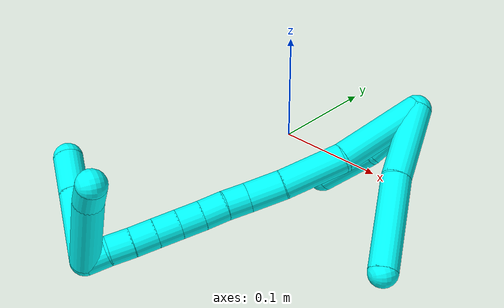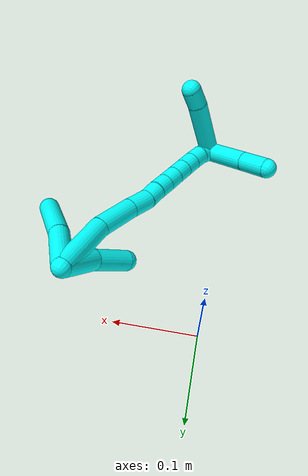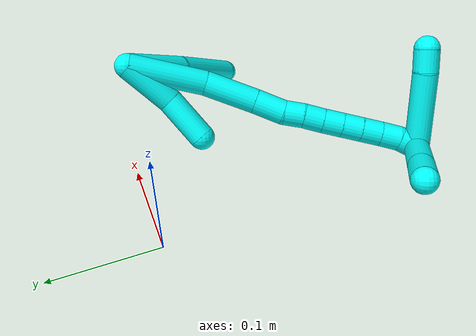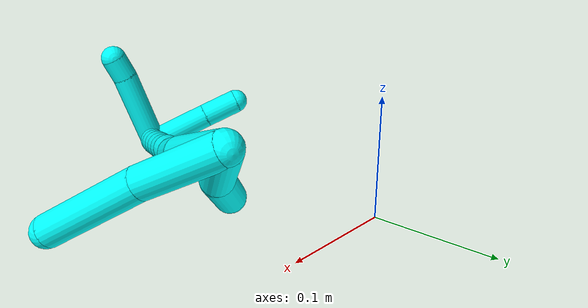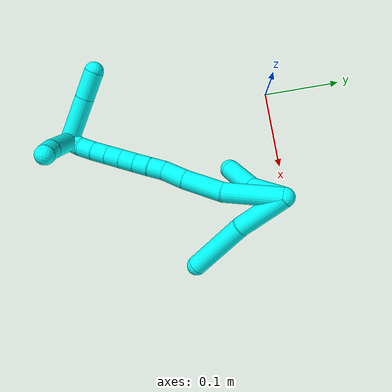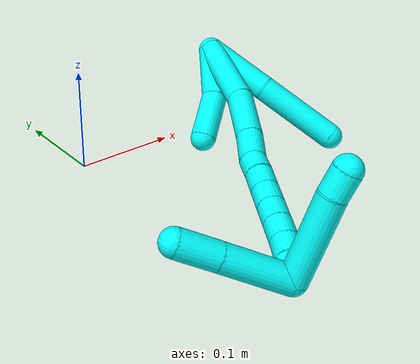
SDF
<sdf version="1.7">
 <world name="default">
  <model name="3">
   <static>0</static>
   <link name="3">
    <collision name="collision-cylinder-e_1_2_8">
     <pose>0.020871 0.015498 0.021859 -0.616726 0.661724 -0.217951</pose>
     <geometry><cylinder><radius>0.0125</radius><length>0.067929</length></cylinder></geometry>
     <surface>
      <friction><ode><mu>1.16</mu><mu2>1.16</mu2><slip1>0</slip1><slip2>0</slip2></ode></friction>
      <contact><ode><kp>1e+06</kp><kd>1</kd><max_vel>0</max_vel><min_depth>0.001</min_depth></ode></contact>
     </surface>
    </collision>
    <visual name="visual-cylinder-e_1_2_8">
     <pose>0.020871 0.015498 0.021859 -0.616726 0.661724 -0.217951</pose>
     <geometry><cylinder><radius>0.0125</radius><length>0.067929</length></cylinder></geometry>
     <material><ambient>0.003922 1 0.996078 1</ambient></material>
    </visual>
    <collision name="collision-cylinder-e_2_8_6">
     <pose>0.070008 0.051264 0.065493 -0.749596 0.75989 -0.311655</pose>
     <geometry><cylinder><radius>0.0125</radius><length>0.082071</length></cylinder></geometry>
     <surface>
      <friction><ode><mu>1.16</mu><mu2>1.16</mu2><slip1>0</slip1><slip2>0</slip2></ode></friction>
      <contact><ode><kp>1e+06</kp><kd>1</kd><max_vel>0</max_vel><min_depth>0.001</min_depth></ode></contact>
     </surface>
    </collision>
    <visual name="visual-cylinder-e_2_8_6">
     <pose>0.070008 0.051264 0.065493 -0.749596 0.75989 -0.311655</pose>
     <geometry><cylinder><radius>0.0125</radius><length>0.082071</length></cylinder></geometry>
     <material><ambient>0.003922 1 0.996078 1</ambient></material>
    </visual>
    <collision name="collision-cylinder-e_1_2_9">
     <pose>0.015586 -0.009627 0.018823 0.472749 0.635254 0.158051</pose>
     <geometry><cylinder><radius>0.0125</radius><length>0.052532</length></cylinder></geometry>
     <surface>
      <friction><ode><mu>1.16</mu><mu2>1.16</mu2><slip1>0</slip1><slip2>0</slip2></ode></friction>
      <contact><ode><kp>1e+06</kp><kd>1</kd><max_vel>0</max_vel><min_depth>0.001</min_depth></ode></contact>
     </surface>
    </collision>
    <visual name="visual-cylinder-e_1_2_9">
     <pose>0.015586 -0.009627 0.018823 0.472749 0.635254 0.158051</pose>
     <geometry><cylinder><radius>0.0125</radius><length>0.052532</length></cylinder></geometry>
     <material><ambient>0.003922 1 0.996078 1</ambient></material>
    </visual>
    <collision name="collision-cylinder-e_2_9_5">
     <pose>0.041839 -0.034058 0.052822 0.773028 0.466179 0.192643</pose>
     <geometry><cylinder><radius>0.0125</radius><length>0.047468</length></cylinder></geometry>
     <surface>
      <friction><ode><mu>1.16</mu><mu2>1.16</mu2><slip1>0</slip1><slip2>0</slip2></ode></friction>
      <contact><ode><kp>1e+06</kp><kd>1</kd><max_vel>0</max_vel><min_depth>0.001</min_depth></ode></contact>
     </surface>
    </collision>
    <visual name="visual-cylinder-e_2_9_5">
     <pose>0.041839 -0.034058 0.052822 0.773028 0.466179 0.192643</pose>
     <geometry><cylinder><radius>0.0125</radius><length>0.047468</length></cylinder></geometry>
     <material><ambient>0.003922 1 0.996078 1</ambient></material>
    </visual>
    <collision name="collision-cylinder-e_1_2_10">
     <pose>0.012628 -0.001421 0.036139 0.039298 0.335935 0.006664</pose>
     <geometry><cylinder><radius>0.0125</radius><length>0.076616</length></cylinder></geometry>
     <surface>
      <friction><ode><mu>1.16</mu><mu2>1.16</mu2><slip1>0</slip1><slip2>0</slip2></ode></friction>
      <contact><ode><kp>1e+06</kp><kd>1</kd><max_vel>0</max_vel><min_depth>0.001</min_depth></ode></contact>
     </surface>
    </collision>
    <visual name="visual-cylinder-e_1_2_10">
     <pose>0.012628 -0.001421 0.036139 0.039298 0.335935 0.006664</pose>
     <geometry><cylinder><radius>0.0125</radius><length>0.076616</length></cylinder></geometry>
     <material><ambient>0.003922 1 0.996078 1</ambient></material>
    </visual>
    <collision name="collision-cylinder-e_2_10_11">
     <pose>0.032173 -0.009675 0.09688 0.270918 0.264508 0.036259</pose>
     <geometry><cylinder><radius>0.0125</radius><length>0.052909</length></cylinder></geometry>
     <surface>
      <friction><ode><mu>1.16</mu><mu2>1.16</mu2><slip1>0</slip1><slip2>0</slip2></ode></friction>
      <contact><ode><kp>1e+06</kp><kd>1</kd><max_vel>0</max_vel><min_depth>0.001</min_depth></ode></contact>
     </surface>
    </collision>
    <visual name="visual-cylinder-e_2_10_11">
     <pose>0.032173 -0.009675 0.09688 0.270918 0.264508 0.036259</pose>
     <geometry><cylinder><radius>0.0125</radius><length>0.052909</length></cylinder></geometry>
     <material><ambient>0.003922 1 0.996078 1</ambient></material>
    </visual>
    <collision name="collision-cylinder-e_3_11_12">
     <pose>0.042379 -0.021461 0.135464 0.340417 0.21833 0.03767</pose>
     <geometry><cylinder><radius>0.0125</radius><length>0.030384</length></cylinder></geometry>
     <surface>
      <friction><ode><mu>1.16</mu><mu2>1.16</mu2><slip1>0</slip1><slip2>0</slip2></ode></friction>
      <contact><ode><kp>1e+06</kp><kd>1</kd><max_vel>0</max_vel><min_depth>0.001</min_depth></ode></contact>
     </surface>
    </collision>
    <visual name="visual-cylinder-e_3_11_12">
     <pose>0.042379 -0.021461 0.135464 0.340417 0.21833 0.03767</pose>
     <geometry><cylinder><radius>0.0125</radius><length>0.030384</length></cylinder></geometry>
     <material><ambient>0.003922 1 0.996078 1</ambient></material>
    </visual>
    <collision name="collision-cylinder-e_4_12_13">
     <pose>0.04697 -0.027763 0.15928 0.136486 0.130198 0.008911</pose>
     <geometry><cylinder><radius>0.0125</radius><length>0.020026</length></cylinder></geometry>
     <surface>
      <friction><ode><mu>1.16</mu><mu2>1.16</mu2><slip1>0</slip1><slip2>0</slip2></ode></friction>
      <contact><ode><kp>1e+06</kp><kd>1</kd><max_vel>0</max_vel><min_depth>0.001</min_depth></ode></contact>
     </surface>
    </collision>
    <visual name="visual-cylinder-e_4_12_13">
     <pose>0.04697 -0.027763 0.15928 0.136486 0.130198 0.008911</pose>
     <geometry><cylinder><radius>0.0125</radius><length>0.020026</length></cylinder></geometry>
     <material><ambient>0.003922 1 0.996078 1</ambient></material>
    </visual>
    <collision name="collision-cylinder-e_5_13_14">
     <pose>0.050397 -0.030947 0.178725 0.188486 0.214056 0.02031</pose>
     <geometry><cylinder><radius>0.0125</radius><length>0.020023</length></cylinder></geometry>
     <surface>
      <friction><ode><mu>1.16</mu><mu2>1.16</mu2><slip1>0</slip1><slip2>0</slip2></ode></friction>
      <contact><ode><kp>1e+06</kp><kd>1</kd><max_vel>0</max_vel><min_depth>0.001</min_depth></ode></contact>
     </surface>
    </collision>
    <visual name="visual-cylinder-e_5_13_14">
     <pose>0.050397 -0.030947 0.178725 0.188486 0.214056 0.02031</pose>
     <geometry><cylinder><radius>0.0125</radius><length>0.020023</length></cylinder></geometry>
     <material><ambient>0.003922 1 0.996078 1</ambient></material>
    </visual>
    <collision name="collision-cylinder-e_6_14_15">
     <pose>0.054257 -0.034546 0.198035 0.180017 0.17411 0.015753</pose>
     <geometry><cylinder><radius>0.0125</radius><length>0.020021</length></cylinder></geometry>
     <surface>
      <friction><ode><mu>1.16</mu><mu2>1.16</mu2><slip1>0</slip1><slip2>0</slip2></ode></friction>
      <contact><ode><kp>1e+06</kp><kd>1</kd><max_vel>0</max_vel><min_depth>0.001</min_depth></ode></contact>
     </surface>
    </collision>
    <visual name="visual-cylinder-e_6_14_15">
     <pose>0.054257 -0.034546 0.198035 0.180017 0.17411 0.015753</pose>
     <geometry><cylinder><radius>0.0125</radius><length>0.020021</length></cylinder></geometry>
     <material><ambient>0.003922 1 0.996078 1</ambient></material>
    </visual>
    <collision name="collision-cylinder-e_7_15_16">
     <pose>0.057724 -0.038074 0.217426 0.179978 0.174126 0.015751</pose>
     <geometry><cylinder><radius>0.0125</radius><length>0.020003</length></cylinder></geometry>
     <surface>
      <friction><ode><mu>1.16</mu><mu2>1.16</mu2><slip1>0</slip1><slip2>0</slip2></ode></friction>
      <contact><ode><kp>1e+06</kp><kd>1</kd><max_vel>0</max_vel><min_depth>0.001</min_depth></ode></contact>
     </surface>
    </collision>
    <visual name="visual-cylinder-e_7_15_16">
     <pose>0.057724 -0.038074 0.217426 0.179978 0.174126 0.015751</pose>
     <geometry><cylinder><radius>0.0125</radius><length>0.020003</length></cylinder></geometry>
     <material><ambient>0.003922 1 0.996078 1</ambient></material>
    </visual>
    <collision name="collision-cylinder-e_8_16_17">
     <pose>0.061273 -0.041588 0.2368 0.178839 0.182476 0.016406</pose>
     <geometry><cylinder><radius>0.0125</radius><length>0.020013</length></cylinder></geometry>
     <surface>
      <friction><ode><mu>1.16</mu><mu2>1.16</mu2><slip1>0</slip1><slip2>0</slip2></ode></friction>
      <contact><ode><kp>1e+06</kp><kd>1</kd><max_vel>0</max_vel><min_depth>0.001</min_depth></ode></contact>
     </surface>
    </collision>
    <visual name="visual-cylinder-e_8_16_17">
     <pose>0.061273 -0.041588 0.2368 0.178839 0.182476 0.016406</pose>
     <geometry><cylinder><radius>0.0125</radius><length>0.020013</length></cylinder></geometry>
     <material><ambient>0.003922 1 0.996078 1</ambient></material>
    </visual>
    <collision name="collision-cylinder-e_9_17_18">
     <pose>0.064614 -0.045467 0.256138 0.217041 0.153088 0.016711</pose>
     <geometry><cylinder><radius>0.0125</radius><length>0.020006</length></cylinder></geometry>
     <surface>
      <friction><ode><mu>1.16</mu><mu2>1.16</mu2><slip1>0</slip1><slip2>0</slip2></ode></friction>
      <contact><ode><kp>1e+06</kp><kd>1</kd><max_vel>0</max_vel><min_depth>0.001</min_depth></ode></contact>
     </surface>
    </collision>
    <visual name="visual-cylinder-e_9_17_18">
     <pose>0.064614 -0.045467 0.256138 0.217041 0.153088 0.016711</pose>
     <geometry><cylinder><radius>0.0125</radius><length>0.020006</length></cylinder></geometry>
     <material><ambient>0.003922 1 0.996078 1</ambient></material>
    </visual>
    <collision name="collision-cylinder-e_10_18_1">
     <pose>0.068807 -0.051274 0.2747 0.391554 0.270085 0.053877</pose>
     <geometry><cylinder><radius>0.0125</radius><length>0.02</length></cylinder></geometry>
     <surface>
      <friction><ode><mu>1.16</mu><mu2>1.16</mu2><slip1>0</slip1><slip2>0</slip2></ode></friction>
      <contact><ode><kp>1e+06</kp><kd>1</kd><max_vel>0</max_vel><min_depth>0.001</min_depth></ode></contact>
     </surface>
    </collision>
    <visual name="visual-cylinder-e_10_18_1">
     <pose>0.068807 -0.051274 0.2747 0.391554 0.270085 0.053877</pose>
     <geometry><cylinder><radius>0.0125</radius><length>0.02</length></cylinder></geometry>
     <material><ambient>0.003922 1 0.996078 1</ambient></material>
    </visual>
    <collision name="collision-cylinder-e_1_1_19">
     <pose>0.040301 -0.031973 0.285011 -1.50981 -0.934725 0.886533</pose>
     <geometry><cylinder><radius>0.0125</radius><length>0.077507</length></cylinder></geometry>
     <surface>
      <friction><ode><mu>1.16</mu><mu2>1.16</mu2><slip1>0</slip1><slip2>0</slip2></ode></friction>
      <contact><ode><kp>1e+06</kp><kd>1</kd><max_vel>0</max_vel><min_depth>0.001</min_depth></ode></contact>
     </surface>
    </collision>
    <visual name="visual-cylinder-e_1_1_19">
     <pose>0.040301 -0.031973 0.285011 -1.50981 -0.934725 0.886533</pose>
     <geometry><cylinder><radius>0.0125</radius><length>0.077507</length></cylinder></geometry>
     <material><ambient>0.003922 1 0.996078 1</ambient></material>
    </visual>
    <collision name="collision-cylinder-e_2_19_4">
     <pose>0.001011 -0.001211 0.286605 -1.54625 -0.806064 0.788498</pose>
     <geometry><cylinder><radius>0.0125</radius><length>0.022493</length></cylinder></geometry>
     <surface>
      <friction><ode><mu>1.16</mu><mu2>1.16</mu2><slip1>0</slip1><slip2>0</slip2></ode></friction>
      <contact><ode><kp>1e+06</kp><kd>1</kd><max_vel>0</max_vel><min_depth>0.001</min_depth></ode></contact>
     </surface>
    </collision>
    <visual name="visual-cylinder-e_2_19_4">
     <pose>0.001011 -0.001211 0.286605 -1.54625 -0.806064 0.788498</pose>
     <geometry><cylinder><radius>0.0125</radius><length>0.022493</length></cylinder></geometry>
     <material><ambient>0.003922 1 0.996078 1</ambient></material>
    </visual>
    <collision name="collision-cylinder-e_1_1_20">
     <pose>0.050947 -0.077996 0.277129 1.84487 -0.708881 -0.908745</pose>
     <geometry><cylinder><radius>0.0125</radius><length>0.063069</length></cylinder></geometry>
     <surface>
      <friction><ode><mu>1.16</mu><mu2>1.16</mu2><slip1>0</slip1><slip2>0</slip2></ode></friction>
      <contact><ode><kp>1e+06</kp><kd>1</kd><max_vel>0</max_vel><min_depth>0.001</min_depth></ode></contact>
     </surface>
    </collision>
    <visual name="visual-cylinder-e_1_1_20">
     <pose>0.050947 -0.077996 0.277129 1.84487 -0.708881 -0.908745</pose>
     <geometry><cylinder><radius>0.0125</radius><length>0.063069</length></cylinder></geometry>
     <material><ambient>0.003922 1 0.996078 1</ambient></material>
    </visual>
    <collision name="collision-cylinder-e_2_20_3">
     <pose>0.018529 -0.114649 0.266853 1.84292 -0.699553 -0.895848</pose>
     <geometry><cylinder><radius>0.0125</radius><length>0.036931</length></cylinder></geometry>
     <surface>
      <friction><ode><mu>1.16</mu><mu2>1.16</mu2><slip1>0</slip1><slip2>0</slip2></ode></friction>
      <contact><ode><kp>1e+06</kp><kd>1</kd><max_vel>0</max_vel><min_depth>0.001</min_depth></ode></contact>
     </surface>
    </collision>
    <visual name="visual-cylinder-e_2_20_3">
     <pose>0.018529 -0.114649 0.266853 1.84292 -0.699553 -0.895848</pose>
     <geometry><cylinder><radius>0.0125</radius><length>0.036931</length></cylinder></geometry>
     <material><ambient>0.003922 1 0.996078 1</ambient></material>
    </visual>
    <collision name="collision-sphere-3">
     <pose>0.00664 -0.128257 0.263056 0 -0 0</pose>
     <geometry><sphere><radius>0.0125</radius></sphere></geometry>
     <surface>
      <friction><ode><mu>1.16</mu><mu2>1.16</mu2><slip1>0</slip1><slip2>0</slip2></ode></friction>
      <contact><ode><kp>1e+06</kp><kd>1</kd><max_vel>0</max_vel><min_depth>0.001</min_depth></ode></contact>
     </surface>
    </collision>
    <visual name="visual-sphere-3">
     <pose>0.00664 -0.128257 0.263056 0 -0 0</pose>
     <geometry><sphere><radius>0.0125</radius></sphere></geometry>
     <material><ambient>0.003922 1 0.996078 1</ambient></material>
    </visual>
    <collision name="collision-sphere-20">
     <pose>0.030419 -0.10104 0.27065 0 -0 0</pose>
     <geometry><sphere><radius>0.0125</radius></sphere></geometry>
     <surface>
      <friction><ode><mu>1.16</mu><mu2>1.16</mu2><slip1>0</slip1><slip2>0</slip2></ode></friction>
      <contact><ode><kp>1e+06</kp><kd>1</kd><max_vel>0</max_vel><min_depth>0.001</min_depth></ode></contact>
     </surface>
    </collision>
    <visual name="visual-sphere-20">
     <pose>0.030419 -0.10104 0.27065 0 -0 0</pose>
     <geometry><sphere><radius>0.0125</radius></sphere></geometry>
     <material><ambient>0.003922 1 0.996078 1</ambient></material>
    </visual>
    <collision name="collision-sphere-4">
     <pose>-0.007104 0.006573 0.286796 0 -0 0</pose>
     <geometry><sphere><radius>0.0125</radius></sphere></geometry>
     <surface>
      <friction><ode><mu>1.16</mu><mu2>1.16</mu2><slip1>0</slip1><slip2>0</slip2></ode></friction>
      <contact><ode><kp>1e+06</kp><kd>1</kd><max_vel>0</max_vel><min_depth>0.001</min_depth></ode></contact>
     </surface>
    </collision>
    <visual name="visual-sphere-4">
     <pose>-0.007104 0.006573 0.286796 0 -0 0</pose>
     <geometry><sphere><radius>0.0125</radius></sphere></geometry>
     <material><ambient>0.003922 1 0.996078 1</ambient></material>
    </visual>
    <collision name="collision-sphere-10">
     <pose>0.025256 -0.002842 0.072277 0 -0 0</pose>
     <geometry><sphere><radius>0.0125</radius></sphere></geometry>
     <surface>
      <friction><ode><mu>1.16</mu><mu2>1.16</mu2><slip1>0</slip1><slip2>0</slip2></ode></friction>
      <contact><ode><kp>1e+06</kp><kd>1</kd><max_vel>0</max_vel><min_depth>0.001</min_depth></ode></contact>
     </surface>
    </collision>
    <visual name="visual-sphere-10">
     <pose>0.025256 -0.002842 0.072277 0 -0 0</pose>
     <geometry><sphere><radius>0.0125</radius></sphere></geometry>
     <material><ambient>0.003922 1 0.996078 1</ambient></material>
    </visual>
    <collision name="collision-sphere-5">
     <pose>0.052507 -0.048864 0.067998 0 -0 0</pose>
     <geometry><sphere><radius>0.0125</radius></sphere></geometry>
     <surface>
      <friction><ode><mu>1.16</mu><mu2>1.16</mu2><slip1>0</slip1><slip2>0</slip2></ode></friction>
      <contact><ode><kp>1e+06</kp><kd>1</kd><max_vel>0</max_vel><min_depth>0.001</min_depth></ode></contact>
     </surface>
    </collision>
    <visual name="visual-sphere-5">
     <pose>0.052507 -0.048864 0.067998 0 -0 0</pose>
     <geometry><sphere><radius>0.0125</radius></sphere></geometry>
     <material><ambient>0.003922 1 0.996078 1</ambient></material>
    </visual>
    <collision name="collision-sphere-6">
     <pose>0.098275 0.071532 0.087266 0 -0 0</pose>
     <geometry><sphere><radius>0.0125</radius></sphere></geometry>
     <surface>
      <friction><ode><mu>1.16</mu><mu2>1.16</mu2><slip1>0</slip1><slip2>0</slip2></ode></friction>
      <contact><ode><kp>1e+06</kp><kd>1</kd><max_vel>0</max_vel><min_depth>0.001</min_depth></ode></contact>
     </surface>
    </collision>
    <visual name="visual-sphere-6">
     <pose>0.098275 0.071532 0.087266 0 -0 0</pose>
     <geometry><sphere><radius>0.0125</radius></sphere></geometry>
     <material><ambient>0.003922 1 0.996078 1</ambient></material>
    </visual>
    <collision name="collision-sphere-9">
     <pose>0.031171 -0.019253 0.037646 0 -0 0</pose>
     <geometry><sphere><radius>0.0125</radius></sphere></geometry>
     <surface>
      <friction><ode><mu>1.16</mu><mu2>1.16</mu2><slip1>0</slip1><slip2>0</slip2></ode></friction>
      <contact><ode><kp>1e+06</kp><kd>1</kd><max_vel>0</max_vel><min_depth>0.001</min_depth></ode></contact>
     </surface>
    </collision>
    <visual name="visual-sphere-9">
     <pose>0.031171 -0.019253 0.037646 0 -0 0</pose>
     <geometry><sphere><radius>0.0125</radius></sphere></geometry>
     <material><ambient>0.003922 1 0.996078 1</ambient></material>
    </visual>
    <collision name="collision-sphere-2">
     <geometry><sphere><radius>0.0125</radius></sphere></geometry>
     <surface>
      <friction><ode><mu>1.16</mu><mu2>1.16</mu2><slip1>0</slip1><slip2>0</slip2></ode></friction>
      <contact><ode><kp>1e+06</kp><kd>1</kd><max_vel>0</max_vel><min_depth>0.001</min_depth></ode></contact>
     </surface>
    </collision>
    <visual name="visual-sphere-2">
     <geometry><sphere><radius>0.0125</radius></sphere></geometry>
     <material><ambient>0.003922 1 0.996078 1</ambient></material>
    </visual>
    <collision name="collision-sphere-19">
     <pose>0.009126 -0.008995 0.286414 0 -0 0</pose>
     <geometry><sphere><radius>0.0125</radius></sphere></geometry>
     <surface>
      <friction><ode><mu>1.16</mu><mu2>1.16</mu2><slip1>0</slip1><slip2>0</slip2></ode></friction>
      <contact><ode><kp>1e+06</kp><kd>1</kd><max_vel>0</max_vel><min_depth>0.001</min_depth></ode></contact>
     </surface>
    </collision>
    <visual name="visual-sphere-19">
     <pose>0.009126 -0.008995 0.286414 0 -0 0</pose>
     <geometry><sphere><radius>0.0125</radius></sphere></geometry>
     <material><ambient>0.003922 1 0.996078 1</ambient></material>
    </visual>
    <collision name="collision-sphere-8">
     <pose>0.041741 0.030996 0.043719 0 -0 0</pose>
     <geometry><sphere><radius>0.0125</radius></sphere></geometry>
     <surface>
      <friction><ode><mu>1.16</mu><mu2>1.16</mu2><slip1>0</slip1><slip2>0</slip2></ode></friction>
      <contact><ode><kp>1e+06</kp><kd>1</kd><max_vel>0</max_vel><min_depth>0.001</min_depth></ode></contact>
     </surface>
    </collision>
    <visual name="visual-sphere-8">
     <pose>0.041741 0.030996 0.043719 0 -0 0</pose>
     <geometry><sphere><radius>0.0125</radius></sphere></geometry>
     <material><ambient>0.003922 1 0.996078 1</ambient></material>
    </visual>
    <collision name="collision-sphere-11">
     <pose>0.039089 -0.016509 0.121484 0 -0 0</pose>
     <geometry><sphere><radius>0.0125</radius></sphere></geometry>
     <surface>
      <friction><ode><mu>1.16</mu><mu2>1.16</mu2><slip1>0</slip1><slip2>0</slip2></ode></friction>
      <contact><ode><kp>1e+06</kp><kd>1</kd><max_vel>0</max_vel><min_depth>0.001</min_depth></ode></contact>
     </surface>
    </collision>
    <visual name="visual-sphere-11">
     <pose>0.039089 -0.016509 0.121484 0 -0 0</pose>
     <geometry><sphere><radius>0.0125</radius></sphere></geometry>
     <material><ambient>0.003922 1 0.996078 1</ambient></material>
    </visual>
    <collision name="collision-sphere-12">
     <pose>0.04567 -0.026412 0.149444 0 -0 0</pose>
     <geometry><sphere><radius>0.0125</radius></sphere></geometry>
     <surface>
      <friction><ode><mu>1.16</mu><mu2>1.16</mu2><slip1>0</slip1><slip2>0</slip2></ode></friction>
      <contact><ode><kp>1e+06</kp><kd>1</kd><max_vel>0</max_vel><min_depth>0.001</min_depth></ode></contact>
     </surface>
    </collision>
    <visual name="visual-sphere-12">
     <pose>0.04567 -0.026412 0.149444 0 -0 0</pose>
     <geometry><sphere><radius>0.0125</radius></sphere></geometry>
     <material><ambient>0.003922 1 0.996078 1</ambient></material>
    </visual>
    <collision name="collision-sphere-13">
     <pose>0.04827 -0.029114 0.169115 0 -0 0</pose>
     <geometry><sphere><radius>0.0125</radius></sphere></geometry>
     <surface>
      <friction><ode><mu>1.16</mu><mu2>1.16</mu2><slip1>0</slip1><slip2>0</slip2></ode></friction>
      <contact><ode><kp>1e+06</kp><kd>1</kd><max_vel>0</max_vel><min_depth>0.001</min_depth></ode></contact>
     </surface>
    </collision>
    <visual name="visual-sphere-13">
     <pose>0.04827 -0.029114 0.169115 0 -0 0</pose>
     <geometry><sphere><radius>0.0125</radius></sphere></geometry>
     <material><ambient>0.003922 1 0.996078 1</ambient></material>
    </visual>
    <collision name="collision-sphere-14">
     <pose>0.052523 -0.03278 0.188335 0 -0 0</pose>
     <geometry><sphere><radius>0.0125</radius></sphere></geometry>
     <surface>
      <friction><ode><mu>1.16</mu><mu2>1.16</mu2><slip1>0</slip1><slip2>0</slip2></ode></friction>
      <contact><ode><kp>1e+06</kp><kd>1</kd><max_vel>0</max_vel><min_depth>0.001</min_depth></ode></contact>
     </surface>
    </collision>
    <visual name="visual-sphere-14">
     <pose>0.052523 -0.03278 0.188335 0 -0 0</pose>
     <geometry><sphere><radius>0.0125</radius></sphere></geometry>
     <material><ambient>0.003922 1 0.996078 1</ambient></material>
    </visual>
    <collision name="collision-sphere-15">
     <pose>0.055992 -0.036311 0.207735 0 -0 0</pose>
     <geometry><sphere><radius>0.0125</radius></sphere></geometry>
     <surface>
      <friction><ode><mu>1.16</mu><mu2>1.16</mu2><slip1>0</slip1><slip2>0</slip2></ode></friction>
      <contact><ode><kp>1e+06</kp><kd>1</kd><max_vel>0</max_vel><min_depth>0.001</min_depth></ode></contact>
     </surface>
    </collision>
    <visual name="visual-sphere-15">
     <pose>0.055992 -0.036311 0.207735 0 -0 0</pose>
     <geometry><sphere><radius>0.0125</radius></sphere></geometry>
     <material><ambient>0.003922 1 0.996078 1</ambient></material>
    </visual>
    <collision name="collision-sphere-16">
     <pose>0.059457 -0.039837 0.227117 0 -0 0</pose>
     <geometry><sphere><radius>0.0125</radius></sphere></geometry>
     <surface>
      <friction><ode><mu>1.16</mu><mu2>1.16</mu2><slip1>0</slip1><slip2>0</slip2></ode></friction>
      <contact><ode><kp>1e+06</kp><kd>1</kd><max_vel>0</max_vel><min_depth>0.001</min_depth></ode></contact>
     </surface>
    </collision>
    <visual name="visual-sphere-16">
     <pose>0.059457 -0.039837 0.227117 0 -0 0</pose>
     <geometry><sphere><radius>0.0125</radius></sphere></geometry>
     <material><ambient>0.003922 1 0.996078 1</ambient></material>
    </visual>
    <collision name="collision-sphere-17">
     <pose>0.063089 -0.043338 0.246484 0 -0 0</pose>
     <geometry><sphere><radius>0.0125</radius></sphere></geometry>
     <surface>
      <friction><ode><mu>1.16</mu><mu2>1.16</mu2><slip1>0</slip1><slip2>0</slip2></ode></friction>
      <contact><ode><kp>1e+06</kp><kd>1</kd><max_vel>0</max_vel><min_depth>0.001</min_depth></ode></contact>
     </surface>
    </collision>
    <visual name="visual-sphere-17">
     <pose>0.063089 -0.043338 0.246484 0 -0 0</pose>
     <geometry><sphere><radius>0.0125</radius></sphere></geometry>
     <material><ambient>0.003922 1 0.996078 1</ambient></material>
    </visual>
    <collision name="collision-sphere-18">
     <pose>0.066139 -0.047596 0.265791 0 -0 0</pose>
     <geometry><sphere><radius>0.0125</radius></sphere></geometry>
     <surface>
      <friction><ode><mu>1.16</mu><mu2>1.16</mu2><slip1>0</slip1><slip2>0</slip2></ode></friction>
      <contact><ode><kp>1e+06</kp><kd>1</kd><max_vel>0</max_vel><min_depth>0.001</min_depth></ode></contact>
     </surface>
    </collision>
    <visual name="visual-sphere-18">
     <pose>0.066139 -0.047596 0.265791 0 -0 0</pose>
     <geometry><sphere><radius>0.0125</radius></sphere></geometry>
     <material><ambient>0.003922 1 0.996078 1</ambient></material>
    </visual>
    <collision name="collision-sphere-1">
     <pose>0.071476 -0.054952 0.283608 0 -0 0</pose>
     <geometry><sphere><radius>0.0125</radius></sphere></geometry>
     <surface>
      <friction><ode><mu>1.16</mu><mu2>1.16</mu2><slip1>0</slip1><slip2>0</slip2></ode></friction>
      <contact><ode><kp>1e+06</kp><kd>1</kd><max_vel>0</max_vel><min_depth>0.001</min_depth></ode></contact>
     </surface>
    </collision>
    <visual name="visual-sphere-1">
     <pose>0.071476 -0.054952 0.283608 0 -0 0</pose>
     <geometry><sphere><radius>0.0125</radius></sphere></geometry>
     <material><ambient>0.003922 1 0.996078 1</ambient></material>
    </visual>
    <inertial>
     <pose>0.03874 -0.020253 0.144902 0 -0 0</pose>
     <mass>0.75</mass>
     <inertia><ixx>0.00017</ixx><ixy>0</ixy><ixz>0</ixz><iyy>0.000182</iyy><iyz>0</iyz><izz>-2e-05</izz></inertia>
    </inertial>
   </link>
   <pose>0.150277 -0.013954 0.092073 1.52395 1.27116 -0.401116</pose>
  </model>
 </world>
</sdf>
